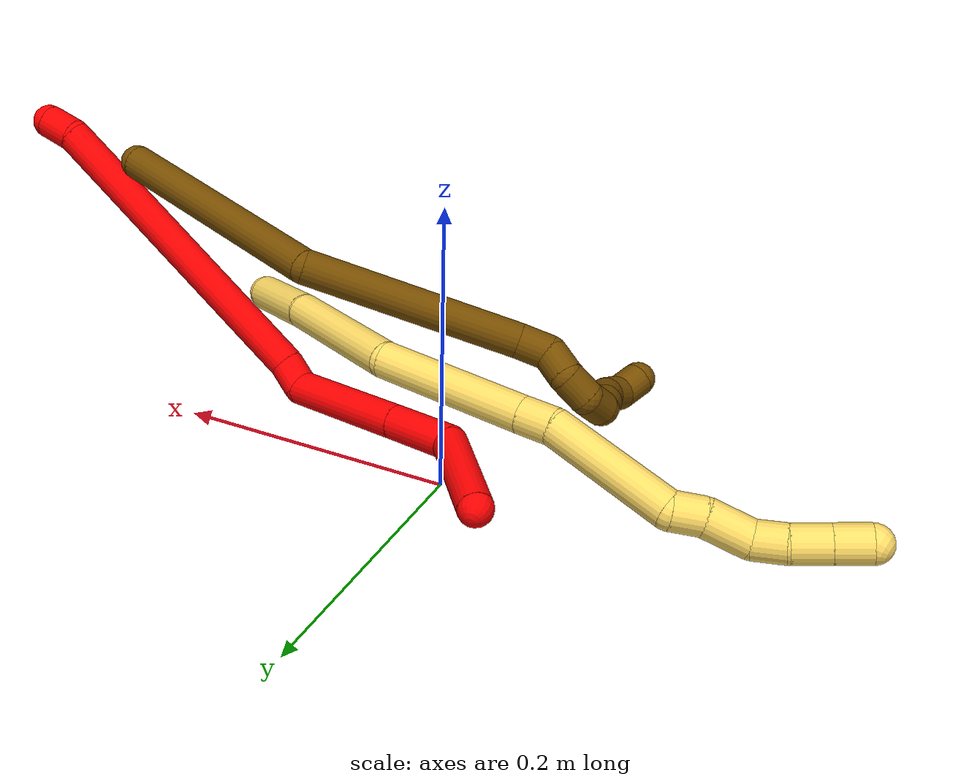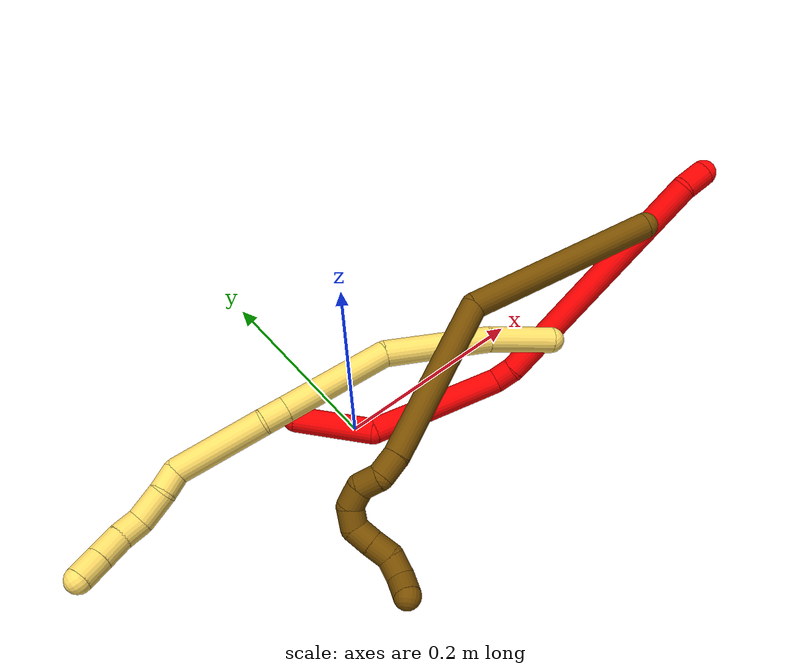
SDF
<sdf version="1.7">
 <world name="default">
  <model name="2">
   <static>0</static>
   <link name="2">
    <collision name="collision-cylinder-e_1_1_4">
     <pose>-0.010536 -0.005236 -0.003547 2.16624 -1.03019 -1.63583</pose>
     <geometry><cylinder><radius>0.0125</radius><length>0.024576</length></cylinder></geometry>
     <surface>
      <friction><ode><mu>1.16</mu><mu2>1.16</mu2><slip1>0</slip1><slip2>0</slip2></ode></friction>
      <contact><ode><kp>1e+06</kp><kd>1</kd><max_vel>0</max_vel><min_depth>0.001</min_depth></ode></contact>
     </surface>
    </collision>
    <visual name="visual-cylinder-e_1_1_4">
     <pose>-0.010536 -0.005236 -0.003547 2.16624 -1.03019 -1.63583</pose>
     <geometry><cylinder><radius>0.0125</radius><length>0.024576</length></cylinder></geometry>
     <material><ambient>1 0 0 1</ambient></material>
    </visual>
    <collision name="collision-cylinder-e_2_4_5">
     <pose>-0.096672 -0.092129 -0.049182 2.0467 -0.688577 -1.0634</pose>
     <geometry><cylinder><radius>0.0125</radius><length>0.23795</length></cylinder></geometry>
     <surface>
      <friction><ode><mu>1.16</mu><mu2>1.16</mu2><slip1>0</slip1><slip2>0</slip2></ode></friction>
      <contact><ode><kp>1e+06</kp><kd>1</kd><max_vel>0</max_vel><min_depth>0.001</min_depth></ode></contact>
     </surface>
    </collision>
    <visual name="visual-cylinder-e_2_4_5">
     <pose>-0.096672 -0.092129 -0.049182 2.0467 -0.688577 -1.0634</pose>
     <geometry><cylinder><radius>0.0125</radius><length>0.23795</length></cylinder></geometry>
     <material><ambient>1 0 0 1</ambient></material>
    </visual>
    <collision name="collision-cylinder-e_3_5_6">
     <pose>-0.178625 -0.180188 -0.097597 2.35048 -0.614539 -1.29965</pose>
     <geometry><cylinder><radius>0.0125</radius><length>0.022032</length></cylinder></geometry>
     <surface>
      <friction><ode><mu>1.16</mu><mu2>1.16</mu2><slip1>0</slip1><slip2>0</slip2></ode></friction>
      <contact><ode><kp>1e+06</kp><kd>1</kd><max_vel>0</max_vel><min_depth>0.001</min_depth></ode></contact>
     </surface>
    </collision>
    <visual name="visual-cylinder-e_3_5_6">
     <pose>-0.178625 -0.180188 -0.097597 2.35048 -0.614539 -1.29965</pose>
     <geometry><cylinder><radius>0.0125</radius><length>0.022032</length></cylinder></geometry>
     <material><ambient>1 0 0 1</ambient></material>
    </visual>
    <collision name="collision-cylinder-e_4_6_7">
     <pose>-0.227259 -0.190823 -0.117773 2.84486 -1.24083 -2.72918</pose>
     <geometry><cylinder><radius>0.0125</radius><length>0.089386</length></cylinder></geometry>
     <surface>
      <friction><ode><mu>1.16</mu><mu2>1.16</mu2><slip1>0</slip1><slip2>0</slip2></ode></friction>
      <contact><ode><kp>1e+06</kp><kd>1</kd><max_vel>0</max_vel><min_depth>0.001</min_depth></ode></contact>
     </surface>
    </collision>
    <visual name="visual-cylinder-e_4_6_7">
     <pose>-0.227259 -0.190823 -0.117773 2.84486 -1.24083 -2.72918</pose>
     <geometry><cylinder><radius>0.0125</radius><length>0.089386</length></cylinder></geometry>
     <material><ambient>1 0 0 1</ambient></material>
    </visual>
    <collision name="collision-cylinder-e_5_7_8">
     <pose>-0.29246 -0.197302 -0.139332 2.85831 -1.23379 -2.74477</pose>
     <geometry><cylinder><radius>0.0125</radius><length>0.048571</length></cylinder></geometry>
     <surface>
      <friction><ode><mu>1.16</mu><mu2>1.16</mu2><slip1>0</slip1><slip2>0</slip2></ode></friction>
      <contact><ode><kp>1e+06</kp><kd>1</kd><max_vel>0</max_vel><min_depth>0.001</min_depth></ode></contact>
     </surface>
    </collision>
    <visual name="visual-cylinder-e_5_7_8">
     <pose>-0.29246 -0.197302 -0.139332 2.85831 -1.23379 -2.74477</pose>
     <geometry><cylinder><radius>0.0125</radius><length>0.048571</length></cylinder></geometry>
     <material><ambient>1 0 0 1</ambient></material>
    </visual>
    <collision name="collision-cylinder-e_6_8_2">
     <pose>-0.33661 -0.195647 -0.179215 -3.02099 -0.579946 2.7423</pose>
     <geometry><cylinder><radius>0.0125</radius><length>0.077486</length></cylinder></geometry>
     <surface>
      <friction><ode><mu>1.16</mu><mu2>1.16</mu2><slip1>0</slip1><slip2>0</slip2></ode></friction>
      <contact><ode><kp>1e+06</kp><kd>1</kd><max_vel>0</max_vel><min_depth>0.001</min_depth></ode></contact>
     </surface>
    </collision>
    <visual name="visual-cylinder-e_6_8_2">
     <pose>-0.33661 -0.195647 -0.179215 -3.02099 -0.579946 2.7423</pose>
     <geometry><cylinder><radius>0.0125</radius><length>0.077486</length></cylinder></geometry>
     <material><ambient>1 0 0 1</ambient></material>
    </visual>
    <collision name="collision-sphere-2">
     <pose>-0.35784 -0.191748 -0.211388 0 -0 0</pose>
     <geometry><sphere><radius>0.0125</radius></sphere></geometry>
     <surface>
      <friction><ode><mu>1.16</mu><mu2>1.16</mu2><slip1>0</slip1><slip2>0</slip2></ode></friction>
      <contact><ode><kp>1e+06</kp><kd>1</kd><max_vel>0</max_vel><min_depth>0.001</min_depth></ode></contact>
     </surface>
    </collision>
    <visual name="visual-sphere-2">
     <pose>-0.35784 -0.191748 -0.211388 0 -0 0</pose>
     <geometry><sphere><radius>0.0125</radius></sphere></geometry>
     <material><ambient>1 0 0 1</ambient></material>
    </visual>
    <collision name="collision-sphere-4">
     <pose>-0.021071 -0.010471 -0.007094 0 -0 0</pose>
     <geometry><sphere><radius>0.0125</radius></sphere></geometry>
     <surface>
      <friction><ode><mu>1.16</mu><mu2>1.16</mu2><slip1>0</slip1><slip2>0</slip2></ode></friction>
      <contact><ode><kp>1e+06</kp><kd>1</kd><max_vel>0</max_vel><min_depth>0.001</min_depth></ode></contact>
     </surface>
    </collision>
    <visual name="visual-sphere-4">
     <pose>-0.021071 -0.010471 -0.007094 0 -0 0</pose>
     <geometry><sphere><radius>0.0125</radius></sphere></geometry>
     <material><ambient>1 0 0 1</ambient></material>
    </visual>
    <collision name="collision-sphere-1">
     <geometry><sphere><radius>0.0125</radius></sphere></geometry>
     <surface>
      <friction><ode><mu>1.16</mu><mu2>1.16</mu2><slip1>0</slip1><slip2>0</slip2></ode></friction>
      <contact><ode><kp>1e+06</kp><kd>1</kd><max_vel>0</max_vel><min_depth>0.001</min_depth></ode></contact>
     </surface>
    </collision>
    <visual name="visual-sphere-1">
     <geometry><sphere><radius>0.0125</radius></sphere></geometry>
     <material><ambient>1 0 0 1</ambient></material>
    </visual>
    <collision name="collision-sphere-8">
     <pose>-0.315379 -0.199546 -0.147042 0 -0 0</pose>
     <geometry><sphere><radius>0.0125</radius></sphere></geometry>
     <surface>
      <friction><ode><mu>1.16</mu><mu2>1.16</mu2><slip1>0</slip1><slip2>0</slip2></ode></friction>
      <contact><ode><kp>1e+06</kp><kd>1</kd><max_vel>0</max_vel><min_depth>0.001</min_depth></ode></contact>
     </surface>
    </collision>
    <visual name="visual-sphere-8">
     <pose>-0.315379 -0.199546 -0.147042 0 -0 0</pose>
     <geometry><sphere><radius>0.0125</radius></sphere></geometry>
     <material><ambient>1 0 0 1</ambient></material>
    </visual>
    <collision name="collision-sphere-5">
     <pose>-0.172274 -0.173788 -0.091269 0 -0 0</pose>
     <geometry><sphere><radius>0.0125</radius></sphere></geometry>
     <surface>
      <friction><ode><mu>1.16</mu><mu2>1.16</mu2><slip1>0</slip1><slip2>0</slip2></ode></friction>
      <contact><ode><kp>1e+06</kp><kd>1</kd><max_vel>0</max_vel><min_depth>0.001</min_depth></ode></contact>
     </surface>
    </collision>
    <visual name="visual-sphere-5">
     <pose>-0.172274 -0.173788 -0.091269 0 -0 0</pose>
     <geometry><sphere><radius>0.0125</radius></sphere></geometry>
     <material><ambient>1 0 0 1</ambient></material>
    </visual>
    <collision name="collision-sphere-6">
     <pose>-0.184977 -0.186589 -0.103925 0 -0 0</pose>
     <geometry><sphere><radius>0.0125</radius></sphere></geometry>
     <surface>
      <friction><ode><mu>1.16</mu><mu2>1.16</mu2><slip1>0</slip1><slip2>0</slip2></ode></friction>
      <contact><ode><kp>1e+06</kp><kd>1</kd><max_vel>0</max_vel><min_depth>0.001</min_depth></ode></contact>
     </surface>
    </collision>
    <visual name="visual-sphere-6">
     <pose>-0.184977 -0.186589 -0.103925 0 -0 0</pose>
     <geometry><sphere><radius>0.0125</radius></sphere></geometry>
     <material><ambient>1 0 0 1</ambient></material>
    </visual>
    <collision name="collision-sphere-7">
     <pose>-0.269541 -0.195057 -0.131622 0 -0 0</pose>
     <geometry><sphere><radius>0.0125</radius></sphere></geometry>
     <surface>
      <friction><ode><mu>1.16</mu><mu2>1.16</mu2><slip1>0</slip1><slip2>0</slip2></ode></friction>
      <contact><ode><kp>1e+06</kp><kd>1</kd><max_vel>0</max_vel><min_depth>0.001</min_depth></ode></contact>
     </surface>
    </collision>
    <visual name="visual-sphere-7">
     <pose>-0.269541 -0.195057 -0.131622 0 -0 0</pose>
     <geometry><sphere><radius>0.0125</radius></sphere></geometry>
     <material><ambient>1 0 0 1</ambient></material>
    </visual>
    <inertial>
     <pose>-0.175598 -0.135641 -0.090243 0 -0 0</pose>
     <mass>0.5</mass>
     <inertia>
      <ixx>-0.00042</ixx>
      <ixy>0</ixy>
      <ixz>0</ixz>
      <iyy>-0.000356</iyy>
      <iyz>0</iyz>
      <izz>0.001581</izz>
     </inertia>
    </inertial>
   </link>
   <pose>0.373489 -0.077136 0.168902 1.25482 0.248561 0.066878</pose>
  </model>
  <model name="5">
   <static>0</static>
   <link name="5">
    <collision name="collision-cylinder-e_1_1_4">
     <pose>-0.005741 0.016965 -0.026141 -2.56592 -0.182179 0.598528</pose>
     <geometry><cylinder><radius>0.0125</radius><length>0.063376</length></cylinder></geometry>
     <surface>
      <friction><ode><mu>1.16</mu><mu2>1.16</mu2><slip1>0</slip1><slip2>0</slip2></ode></friction>
      <contact><ode><kp>1e+06</kp><kd>1</kd><max_vel>0</max_vel><min_depth>0.001</min_depth></ode></contact>
     </surface>
    </collision>
    <visual name="visual-cylinder-e_1_1_4">
     <pose>-0.005741 0.016965 -0.026141 -2.56592 -0.182179 0.598528</pose>
     <geometry><cylinder><radius>0.0125</radius><length>0.063376</length></cylinder></geometry>
     <material><ambient>1 0.858824 0.4 1</ambient></material>
    </visual>
    <collision name="collision-cylinder-e_2_4_5">
     <pose>-0.016974 0.055629 -0.097721 -2.69608 -0.108634 0.471147</pose>
     <geometry><cylinder><radius>0.0125</radius><length>0.101307</length></cylinder></geometry>
     <surface>
      <friction><ode><mu>1.16</mu><mu2>1.16</mu2><slip1>0</slip1><slip2>0</slip2></ode></friction>
      <contact><ode><kp>1e+06</kp><kd>1</kd><max_vel>0</max_vel><min_depth>0.001</min_depth></ode></contact>
     </surface>
    </collision>
    <visual name="visual-cylinder-e_2_4_5">
     <pose>-0.016974 0.055629 -0.097721 -2.69608 -0.108634 0.471147</pose>
     <geometry><cylinder><radius>0.0125</radius><length>0.101307</length></cylinder></geometry>
     <material><ambient>1 0.858824 0.4 1</ambient></material>
    </visual>
    <collision name="collision-cylinder-e_3_5_6">
     <pose>-0.030618 0.080465 -0.19485 -3.08098 -0.156141 2.40213</pose>
     <geometry><cylinder><radius>0.0125</radius><length>0.104844</length></cylinder></geometry>
     <surface>
      <friction><ode><mu>1.16</mu><mu2>1.16</mu2><slip1>0</slip1><slip2>0</slip2></ode></friction>
      <contact><ode><kp>1e+06</kp><kd>1</kd><max_vel>0</max_vel><min_depth>0.001</min_depth></ode></contact>
     </surface>
    </collision>
    <visual name="visual-cylinder-e_3_5_6">
     <pose>-0.030618 0.080465 -0.19485 -3.08098 -0.156141 2.40213</pose>
     <geometry><cylinder><radius>0.0125</radius><length>0.104844</length></cylinder></geometry>
     <material><ambient>1 0.858824 0.4 1</ambient></material>
    </visual>
    <collision name="collision-cylinder-e_4_6_7">
     <pose>-0.040733 0.084331 -0.257697 -3.07642 -0.173799 2.42551</pose>
     <geometry><cylinder><radius>0.0125</radius><length>0.022705</length></cylinder></geometry>
     <surface>
      <friction><ode><mu>1.16</mu><mu2>1.16</mu2><slip1>0</slip1><slip2>0</slip2></ode></friction>
      <contact><ode><kp>1e+06</kp><kd>1</kd><max_vel>0</max_vel><min_depth>0.001</min_depth></ode></contact>
     </surface>
    </collision>
    <visual name="visual-cylinder-e_4_6_7">
     <pose>-0.040733 0.084331 -0.257697 -3.07642 -0.173799 2.42551</pose>
     <geometry><cylinder><radius>0.0125</radius><length>0.022705</length></cylinder></geometry>
     <material><ambient>1 0.858824 0.4 1</ambient></material>
    </visual>
    <collision name="collision-cylinder-e_5_7_8">
     <pose>-0.039298 0.089087 -0.312347 -3.04924 0.077637 -1.39787</pose>
     <geometry><cylinder><radius>0.0125</radius><length>0.087621</length></cylinder></geometry>
     <surface>
      <friction><ode><mu>1.16</mu><mu2>1.16</mu2><slip1>0</slip1><slip2>0</slip2></ode></friction>
      <contact><ode><kp>1e+06</kp><kd>1</kd><max_vel>0</max_vel><min_depth>0.001</min_depth></ode></contact>
     </surface>
    </collision>
    <visual name="visual-cylinder-e_5_7_8">
     <pose>-0.039298 0.089087 -0.312347 -3.04924 0.077637 -1.39787</pose>
     <geometry><cylinder><radius>0.0125</radius><length>0.087621</length></cylinder></geometry>
     <material><ambient>1 0.858824 0.4 1</ambient></material>
    </visual>
    <collision name="collision-cylinder-e_6_8_9">
     <pose>-0.038506 0.088456 -0.365007 2.67146 -0.248184 -0.960322</pose>
     <geometry><cylinder><radius>0.0125</radius><length>0.021217</length></cylinder></geometry>
     <surface>
      <friction><ode><mu>1.16</mu><mu2>1.16</mu2><slip1>0</slip1><slip2>0</slip2></ode></friction>
      <contact><ode><kp>1e+06</kp><kd>1</kd><max_vel>0</max_vel><min_depth>0.001</min_depth></ode></contact>
     </surface>
    </collision>
    <visual name="visual-cylinder-e_6_8_9">
     <pose>-0.038506 0.088456 -0.365007 2.67146 -0.248184 -0.960322</pose>
     <geometry><cylinder><radius>0.0125</radius><length>0.021217</length></cylinder></geometry>
     <material><ambient>1 0.858824 0.4 1</ambient></material>
    </visual>
    <collision name="collision-cylinder-e_7_9_10">
     <pose>-0.041131 0.078888 -0.388545 2.81237 -0.001283 -0.007724</pose>
     <geometry><cylinder><radius>0.0125</radius><length>0.030371</length></cylinder></geometry>
     <surface>
      <friction><ode><mu>1.16</mu><mu2>1.16</mu2><slip1>0</slip1><slip2>0</slip2></ode></friction>
      <contact><ode><kp>1e+06</kp><kd>1</kd><max_vel>0</max_vel><min_depth>0.001</min_depth></ode></contact>
     </surface>
    </collision>
    <visual name="visual-cylinder-e_7_9_10">
     <pose>-0.041131 0.078888 -0.388545 2.81237 -0.001283 -0.007724</pose>
     <geometry><cylinder><radius>0.0125</radius><length>0.030371</length></cylinder></geometry>
     <material><ambient>1 0.858824 0.4 1</ambient></material>
    </visual>
    <collision name="collision-cylinder-e_8_10_11">
     <pose>-0.045341 0.072564 -0.412662 2.99748 -0.402197 -2.46098</pose>
     <geometry><cylinder><radius>0.0125</radius><length>0.021407</length></cylinder></geometry>
     <surface>
      <friction><ode><mu>1.16</mu><mu2>1.16</mu2><slip1>0</slip1><slip2>0</slip2></ode></friction>
      <contact><ode><kp>1e+06</kp><kd>1</kd><max_vel>0</max_vel><min_depth>0.001</min_depth></ode></contact>
     </surface>
    </collision>
    <visual name="visual-cylinder-e_8_10_11">
     <pose>-0.045341 0.072564 -0.412662 2.99748 -0.402197 -2.46098</pose>
     <geometry><cylinder><radius>0.0125</radius><length>0.021407</length></cylinder></geometry>
     <material><ambient>1 0.858824 0.4 1</ambient></material>
    </visual>
    <collision name="collision-cylinder-e_9_11_12">
     <pose>-0.055235 0.067847 -0.432592 2.82797 -0.489575 -2.01299</pose>
     <geometry><cylinder><radius>0.0125</radius><length>0.02426</length></cylinder></geometry>
     <surface>
      <friction><ode><mu>1.16</mu><mu2>1.16</mu2><slip1>0</slip1><slip2>0</slip2></ode></friction>
      <contact><ode><kp>1e+06</kp><kd>1</kd><max_vel>0</max_vel><min_depth>0.001</min_depth></ode></contact>
     </surface>
    </collision>
    <visual name="visual-cylinder-e_9_11_12">
     <pose>-0.055235 0.067847 -0.432592 2.82797 -0.489575 -2.01299</pose>
     <geometry><cylinder><radius>0.0125</radius><length>0.02426</length></cylinder></geometry>
     <material><ambient>1 0.858824 0.4 1</ambient></material>
    </visual>
    <collision name="collision-cylinder-e_10_12_2">
     <pose>-0.06631 0.061508 -0.452416 2.83649 -0.488433 -2.03597</pose>
     <geometry><cylinder><radius>0.0125</radius><length>0.022893</length></cylinder></geometry>
     <surface>
      <friction><ode><mu>1.16</mu><mu2>1.16</mu2><slip1>0</slip1><slip2>0</slip2></ode></friction>
      <contact><ode><kp>1e+06</kp><kd>1</kd><max_vel>0</max_vel><min_depth>0.001</min_depth></ode></contact>
     </surface>
    </collision>
    <visual name="visual-cylinder-e_10_12_2">
     <pose>-0.06631 0.061508 -0.452416 2.83649 -0.488433 -2.03597</pose>
     <geometry><cylinder><radius>0.0125</radius><length>0.022893</length></cylinder></geometry>
     <material><ambient>1 0.858824 0.4 1</ambient></material>
    </visual>
    <collision name="collision-sphere-2">
     <pose>-0.071681 0.058472 -0.462057 0 -0 0</pose>
     <geometry><sphere><radius>0.0125</radius></sphere></geometry>
     <surface>
      <friction><ode><mu>1.16</mu><mu2>1.16</mu2><slip1>0</slip1><slip2>0</slip2></ode></friction>
      <contact><ode><kp>1e+06</kp><kd>1</kd><max_vel>0</max_vel><min_depth>0.001</min_depth></ode></contact>
     </surface>
    </collision>
    <visual name="visual-sphere-2">
     <pose>-0.071681 0.058472 -0.462057 0 -0 0</pose>
     <geometry><sphere><radius>0.0125</radius></sphere></geometry>
     <material><ambient>1 0.858824 0.4 1</ambient></material>
    </visual>
    <collision name="collision-sphere-12">
     <pose>-0.060939 0.064545 -0.442775 0 -0 0</pose>
     <geometry><sphere><radius>0.0125</radius></sphere></geometry>
     <surface>
      <friction><ode><mu>1.16</mu><mu2>1.16</mu2><slip1>0</slip1><slip2>0</slip2></ode></friction>
      <contact><ode><kp>1e+06</kp><kd>1</kd><max_vel>0</max_vel><min_depth>0.001</min_depth></ode></contact>
     </surface>
    </collision>
    <visual name="visual-sphere-12">
     <pose>-0.060939 0.064545 -0.442775 0 -0 0</pose>
     <geometry><sphere><radius>0.0125</radius></sphere></geometry>
     <material><ambient>1 0.858824 0.4 1</ambient></material>
    </visual>
    <collision name="collision-sphere-11">
     <pose>-0.049531 0.07115 -0.422409 0 -0 0</pose>
     <geometry><sphere><radius>0.0125</radius></sphere></geometry>
     <surface>
      <friction><ode><mu>1.16</mu><mu2>1.16</mu2><slip1>0</slip1><slip2>0</slip2></ode></friction>
      <contact><ode><kp>1e+06</kp><kd>1</kd><max_vel>0</max_vel><min_depth>0.001</min_depth></ode></contact>
     </surface>
    </collision>
    <visual name="visual-sphere-11">
     <pose>-0.049531 0.07115 -0.422409 0 -0 0</pose>
     <geometry><sphere><radius>0.0125</radius></sphere></geometry>
     <material><ambient>1 0.858824 0.4 1</ambient></material>
    </visual>
    <collision name="collision-sphere-10">
     <pose>-0.041151 0.073979 -0.402914 0 -0 0</pose>
     <geometry><sphere><radius>0.0125</radius></sphere></geometry>
     <surface>
      <friction><ode><mu>1.16</mu><mu2>1.16</mu2><slip1>0</slip1><slip2>0</slip2></ode></friction>
      <contact><ode><kp>1e+06</kp><kd>1</kd><max_vel>0</max_vel><min_depth>0.001</min_depth></ode></contact>
     </surface>
    </collision>
    <visual name="visual-sphere-10">
     <pose>-0.041151 0.073979 -0.402914 0 -0 0</pose>
     <geometry><sphere><radius>0.0125</radius></sphere></geometry>
     <material><ambient>1 0.858824 0.4 1</ambient></material>
    </visual>
    <collision name="collision-sphere-9">
     <pose>-0.041112 0.083798 -0.374175 0 -0 0</pose>
     <geometry><sphere><radius>0.0125</radius></sphere></geometry>
     <surface>
      <friction><ode><mu>1.16</mu><mu2>1.16</mu2><slip1>0</slip1><slip2>0</slip2></ode></friction>
      <contact><ode><kp>1e+06</kp><kd>1</kd><max_vel>0</max_vel><min_depth>0.001</min_depth></ode></contact>
     </surface>
    </collision>
    <visual name="visual-sphere-9">
     <pose>-0.041112 0.083798 -0.374175 0 -0 0</pose>
     <geometry><sphere><radius>0.0125</radius></sphere></geometry>
     <material><ambient>1 0.858824 0.4 1</ambient></material>
    </visual>
    <collision name="collision-sphere-4">
     <pose>-0.011482 0.03393 -0.052281 0 -0 0</pose>
     <geometry><sphere><radius>0.0125</radius></sphere></geometry>
     <surface>
      <friction><ode><mu>1.16</mu><mu2>1.16</mu2><slip1>0</slip1><slip2>0</slip2></ode></friction>
      <contact><ode><kp>1e+06</kp><kd>1</kd><max_vel>0</max_vel><min_depth>0.001</min_depth></ode></contact>
     </surface>
    </collision>
    <visual name="visual-sphere-4">
     <pose>-0.011482 0.03393 -0.052281 0 -0 0</pose>
     <geometry><sphere><radius>0.0125</radius></sphere></geometry>
     <material><ambient>1 0.858824 0.4 1</ambient></material>
    </visual>
    <collision name="collision-sphere-1">
     <geometry><sphere><radius>0.0125</radius></sphere></geometry>
     <surface>
      <friction><ode><mu>1.16</mu><mu2>1.16</mu2><slip1>0</slip1><slip2>0</slip2></ode></friction>
      <contact><ode><kp>1e+06</kp><kd>1</kd><max_vel>0</max_vel><min_depth>0.001</min_depth></ode></contact>
     </surface>
    </collision>
    <visual name="visual-sphere-1">
     <geometry><sphere><radius>0.0125</radius></sphere></geometry>
     <material><ambient>1 0.858824 0.4 1</ambient></material>
    </visual>
    <collision name="collision-sphere-8">
     <pose>-0.0359 0.093115 -0.355839 0 -0 0</pose>
     <geometry><sphere><radius>0.0125</radius></sphere></geometry>
     <surface>
      <friction><ode><mu>1.16</mu><mu2>1.16</mu2><slip1>0</slip1><slip2>0</slip2></ode></friction>
      <contact><ode><kp>1e+06</kp><kd>1</kd><max_vel>0</max_vel><min_depth>0.001</min_depth></ode></contact>
     </surface>
    </collision>
    <visual name="visual-sphere-8">
     <pose>-0.0359 0.093115 -0.355839 0 -0 0</pose>
     <geometry><sphere><radius>0.0125</radius></sphere></geometry>
     <material><ambient>1 0.858824 0.4 1</ambient></material>
    </visual>
    <collision name="collision-sphere-5">
     <pose>-0.022466 0.077328 -0.143161 0 -0 0</pose>
     <geometry><sphere><radius>0.0125</radius></sphere></geometry>
     <surface>
      <friction><ode><mu>1.16</mu><mu2>1.16</mu2><slip1>0</slip1><slip2>0</slip2></ode></friction>
      <contact><ode><kp>1e+06</kp><kd>1</kd><max_vel>0</max_vel><min_depth>0.001</min_depth></ode></contact>
     </surface>
    </collision>
    <visual name="visual-sphere-5">
     <pose>-0.022466 0.077328 -0.143161 0 -0 0</pose>
     <geometry><sphere><radius>0.0125</radius></sphere></geometry>
     <material><ambient>1 0.858824 0.4 1</ambient></material>
    </visual>
    <collision name="collision-sphere-6">
     <pose>-0.03877 0.083602 -0.246539 0 -0 0</pose>
     <geometry><sphere><radius>0.0125</radius></sphere></geometry>
     <surface>
      <friction><ode><mu>1.16</mu><mu2>1.16</mu2><slip1>0</slip1><slip2>0</slip2></ode></friction>
      <contact><ode><kp>1e+06</kp><kd>1</kd><max_vel>0</max_vel><min_depth>0.001</min_depth></ode></contact>
     </surface>
    </collision>
    <visual name="visual-sphere-6">
     <pose>-0.03877 0.083602 -0.246539 0 -0 0</pose>
     <geometry><sphere><radius>0.0125</radius></sphere></geometry>
     <material><ambient>1 0.858824 0.4 1</ambient></material>
    </visual>
    <collision name="collision-sphere-7">
     <pose>-0.042696 0.085059 -0.268854 0 -0 0</pose>
     <geometry><sphere><radius>0.0125</radius></sphere></geometry>
     <surface>
      <friction><ode><mu>1.16</mu><mu2>1.16</mu2><slip1>0</slip1><slip2>0</slip2></ode></friction>
      <contact><ode><kp>1e+06</kp><kd>1</kd><max_vel>0</max_vel><min_depth>0.001</min_depth></ode></contact>
     </surface>
    </collision>
    <visual name="visual-sphere-7">
     <pose>-0.042696 0.085059 -0.268854 0 -0 0</pose>
     <geometry><sphere><radius>0.0125</radius></sphere></geometry>
     <material><ambient>1 0.858824 0.4 1</ambient></material>
    </visual>
    <inertial>
     <pose>-0.031113 0.067496 -0.22887 0 -0 0</pose>
     <mass>0.5</mass>
     <inertia><ixx>8.9e-05</ixx><ixy>0</ixy><ixz>0</ixz><iyy>4.2e-05</iyy><iyz>0</iyz><izz>-6.8e-05</izz></inertia>
    </inertial>
   </link>
   <pose>0.18415 -0.07804 0.066811 1.05647 1.08371 0.983697</pose>
  </model>
  <model name="12">
   <static>0</static>
   <link name="12">
    <collision name="collision-cylinder-e_1_1_4">
     <pose>0.056938 -0.052862 -0.045959 2.28646 0.682531 1.32412</pose>
     <geometry><cylinder><radius>0.0125</radius><length>0.180539</length></cylinder></geometry>
     <surface>
      <friction><ode><mu>1.16</mu><mu2>1.16</mu2><slip1>0</slip1><slip2>0</slip2></ode></friction>
      <contact><ode><kp>1e+06</kp><kd>1</kd><max_vel>0</max_vel><min_depth>0.001</min_depth></ode></contact>
     </surface>
    </collision>
    <visual name="visual-cylinder-e_1_1_4">
     <pose>0.056938 -0.052862 -0.045959 2.28646 0.682531 1.32412</pose>
     <geometry><cylinder><radius>0.0125</radius><length>0.180539</length></cylinder></geometry>
     <material><ambient>0.466667 0.301961 0 1</ambient></material>
    </visual>
    <collision name="collision-cylinder-e_2_4_5">
     <pose>0.130009 -0.132602 -0.163027 2.78021 0.209108 1.04279</pose>
     <geometry><cylinder><radius>0.0125</radius><length>0.155424</length></cylinder></geometry>
     <surface>
      <friction><ode><mu>1.16</mu><mu2>1.16</mu2><slip1>0</slip1><slip2>0</slip2></ode></friction>
      <contact><ode><kp>1e+06</kp><kd>1</kd><max_vel>0</max_vel><min_depth>0.001</min_depth></ode></contact>
     </surface>
    </collision>
    <visual name="visual-cylinder-e_2_4_5">
     <pose>0.130009 -0.132602 -0.163027 2.78021 0.209108 1.04279</pose>
     <geometry><cylinder><radius>0.0125</radius><length>0.155424</length></cylinder></geometry>
     <material><ambient>0.466667 0.301961 0 1</ambient></material>
    </visual>
    <collision name="collision-cylinder-e_3_5_6">
     <pose>0.150074 -0.164347 -0.243726 2.67197 0.350647 1.27477</pose>
     <geometry><cylinder><radius>0.0125</radius><length>0.022903</length></cylinder></geometry>
     <surface>
      <friction><ode><mu>1.16</mu><mu2>1.16</mu2><slip1>0</slip1><slip2>0</slip2></ode></friction>
      <contact><ode><kp>1e+06</kp><kd>1</kd><max_vel>0</max_vel><min_depth>0.001</min_depth></ode></contact>
     </surface>
    </collision>
    <visual name="visual-cylinder-e_3_5_6">
     <pose>0.150074 -0.164347 -0.243726 2.67197 0.350647 1.27477</pose>
     <geometry><cylinder><radius>0.0125</radius><length>0.022903</length></cylinder></geometry>
     <material><ambient>0.466667 0.301961 0 1</ambient></material>
    </visual>
    <collision name="collision-cylinder-e_4_6_7">
     <pose>0.158091 -0.177986 -0.257004 1.96872 0.405303 0.599856</pose>
     <geometry><cylinder><radius>0.0125</radius><length>0.020708</length></cylinder></geometry>
     <surface>
      <friction><ode><mu>1.16</mu><mu2>1.16</mu2><slip1>0</slip1><slip2>0</slip2></ode></friction>
      <contact><ode><kp>1e+06</kp><kd>1</kd><max_vel>0</max_vel><min_depth>0.001</min_depth></ode></contact>
     </surface>
    </collision>
    <visual name="visual-cylinder-e_4_6_7">
     <pose>0.158091 -0.177986 -0.257004 1.96872 0.405303 0.599856</pose>
     <geometry><cylinder><radius>0.0125</radius><length>0.020708</length></cylinder></geometry>
     <material><ambient>0.466667 0.301961 0 1</ambient></material>
    </visual>
    <collision name="collision-cylinder-e_5_7_8">
     <pose>0.161774 -0.193863 -0.267993 2.3698 -0.039194 -0.096411</pose>
     <geometry><cylinder><radius>0.0125</radius><length>0.020392</length></cylinder></geometry>
     <surface>
      <friction><ode><mu>1.16</mu><mu2>1.16</mu2><slip1>0</slip1><slip2>0</slip2></ode></friction>
      <contact><ode><kp>1e+06</kp><kd>1</kd><max_vel>0</max_vel><min_depth>0.001</min_depth></ode></contact>
     </surface>
    </collision>
    <visual name="visual-cylinder-e_5_7_8">
     <pose>0.161774 -0.193863 -0.267993 2.3698 -0.039194 -0.096411</pose>
     <geometry><cylinder><radius>0.0125</radius><length>0.020392</length></cylinder></geometry>
     <material><ambient>0.466667 0.301961 0 1</ambient></material>
    </visual>
    <collision name="collision-cylinder-e_6_8_9">
     <pose>0.156169 -0.203608 -0.283418 2.82742 -0.547312 -2.11413</pose>
     <geometry><cylinder><radius>0.0125</radius><length>0.020006</length></cylinder></geometry>
     <surface>
      <friction><ode><mu>1.16</mu><mu2>1.16</mu2><slip1>0</slip1><slip2>0</slip2></ode></friction>
      <contact><ode><kp>1e+06</kp><kd>1</kd><max_vel>0</max_vel><min_depth>0.001</min_depth></ode></contact>
     </surface>
    </collision>
    <visual name="visual-cylinder-e_6_8_9">
     <pose>0.156169 -0.203608 -0.283418 2.82742 -0.547312 -2.11413</pose>
     <geometry><cylinder><radius>0.0125</radius><length>0.020006</length></cylinder></geometry>
     <material><ambient>0.466667 0.301961 0 1</ambient></material>
    </visual>
    <collision name="collision-cylinder-e_7_9_10">
     <pose>0.14347 -0.202472 -0.296996 -2.53611 -0.846185 1.92868</pose>
     <geometry><cylinder><radius>0.0125</radius><length>0.020015</length></cylinder></geometry>
     <surface>
      <friction><ode><mu>1.16</mu><mu2>1.16</mu2><slip1>0</slip1><slip2>0</slip2></ode></friction>
      <contact><ode><kp>1e+06</kp><kd>1</kd><max_vel>0</max_vel><min_depth>0.001</min_depth></ode></contact>
     </surface>
    </collision>
    <visual name="visual-cylinder-e_7_9_10">
     <pose>0.14347 -0.202472 -0.296996 -2.53611 -0.846185 1.92868</pose>
     <geometry><cylinder><radius>0.0125</radius><length>0.020015</length></cylinder></geometry>
     <material><ambient>0.466667 0.301961 0 1</ambient></material>
    </visual>
    <collision name="collision-cylinder-e_8_10_11">
     <pose>0.128251 -0.194778 -0.307458 -2.47758 -0.882167 1.88007</pose>
     <geometry><cylinder><radius>0.0125</radius><length>0.020012</length></cylinder></geometry>
     <surface>
      <friction><ode><mu>1.16</mu><mu2>1.16</mu2><slip1>0</slip1><slip2>0</slip2></ode></friction>
      <contact><ode><kp>1e+06</kp><kd>1</kd><max_vel>0</max_vel><min_depth>0.001</min_depth></ode></contact>
     </surface>
    </collision>
    <visual name="visual-cylinder-e_8_10_11">
     <pose>0.128251 -0.194778 -0.307458 -2.47758 -0.882167 1.88007</pose>
     <geometry><cylinder><radius>0.0125</radius><length>0.020012</length></cylinder></geometry>
     <material><ambient>0.466667 0.301961 0 1</ambient></material>
    </visual>
    <collision name="collision-cylinder-e_9_11_12">
     <pose>0.115226 -0.189077 -0.320757 -2.92992 -0.558433 2.4319</pose>
     <geometry><cylinder><radius>0.0125</radius><length>0.02</length></cylinder></geometry>
     <surface>
      <friction><ode><mu>1.16</mu><mu2>1.16</mu2><slip1>0</slip1><slip2>0</slip2></ode></friction>
      <contact><ode><kp>1e+06</kp><kd>1</kd><max_vel>0</max_vel><min_depth>0.001</min_depth></ode></contact>
     </surface>
    </collision>
    <visual name="visual-cylinder-e_9_11_12">
     <pose>0.115226 -0.189077 -0.320757 -2.92992 -0.558433 2.4319</pose>
     <geometry><cylinder><radius>0.0125</radius><length>0.02</length></cylinder></geometry>
     <material><ambient>0.466667 0.301961 0 1</ambient></material>
    </visual>
    <collision name="collision-cylinder-e_10_12_2">
     <pose>0.109597 -0.181861 -0.337437 -2.56673 -0.033112 0.111902</pose>
     <geometry><cylinder><radius>0.0125</radius><length>0.02</length></cylinder></geometry>
     <surface>
      <friction><ode><mu>1.16</mu><mu2>1.16</mu2><slip1>0</slip1><slip2>0</slip2></ode></friction>
      <contact><ode><kp>1e+06</kp><kd>1</kd><max_vel>0</max_vel><min_depth>0.001</min_depth></ode></contact>
     </surface>
    </collision>
    <visual name="visual-cylinder-e_10_12_2">
     <pose>0.109597 -0.181861 -0.337437 -2.56673 -0.033112 0.111902</pose>
     <geometry><cylinder><radius>0.0125</radius><length>0.02</length></cylinder></geometry>
     <material><ambient>0.466667 0.301961 0 1</ambient></material>
    </visual>
    <collision name="collision-sphere-2">
     <pose>0.109266 -0.176427 -0.345825 0 -0 0</pose>
     <geometry><sphere><radius>0.0125</radius></sphere></geometry>
     <surface>
      <friction><ode><mu>1.16</mu><mu2>1.16</mu2><slip1>0</slip1><slip2>0</slip2></ode></friction>
      <contact><ode><kp>1e+06</kp><kd>1</kd><max_vel>0</max_vel><min_depth>0.001</min_depth></ode></contact>
     </surface>
    </collision>
    <visual name="visual-sphere-2">
     <pose>0.109266 -0.176427 -0.345825 0 -0 0</pose>
     <geometry><sphere><radius>0.0125</radius></sphere></geometry>
     <material><ambient>0.466667 0.301961 0 1</ambient></material>
    </visual>
    <collision name="collision-sphere-12">
     <pose>0.109928 -0.187295 -0.329049 0 -0 0</pose>
     <geometry><sphere><radius>0.0125</radius></sphere></geometry>
     <surface>
      <friction><ode><mu>1.16</mu><mu2>1.16</mu2><slip1>0</slip1><slip2>0</slip2></ode></friction>
      <contact><ode><kp>1e+06</kp><kd>1</kd><max_vel>0</max_vel><min_depth>0.001</min_depth></ode></contact>
     </surface>
    </collision>
    <visual name="visual-sphere-12">
     <pose>0.109928 -0.187295 -0.329049 0 -0 0</pose>
     <geometry><sphere><radius>0.0125</radius></sphere></geometry>
     <material><ambient>0.466667 0.301961 0 1</ambient></material>
    </visual>
    <collision name="collision-sphere-11">
     <pose>0.120525 -0.190859 -0.312465 0 -0 0</pose>
     <geometry><sphere><radius>0.0125</radius></sphere></geometry>
     <surface>
      <friction><ode><mu>1.16</mu><mu2>1.16</mu2><slip1>0</slip1><slip2>0</slip2></ode></friction>
      <contact><ode><kp>1e+06</kp><kd>1</kd><max_vel>0</max_vel><min_depth>0.001</min_depth></ode></contact>
     </surface>
    </collision>
    <visual name="visual-sphere-11">
     <pose>0.120525 -0.190859 -0.312465 0 -0 0</pose>
     <geometry><sphere><radius>0.0125</radius></sphere></geometry>
     <material><ambient>0.466667 0.301961 0 1</ambient></material>
    </visual>
    <collision name="collision-sphere-10">
     <pose>0.135977 -0.198697 -0.30245 0 -0 0</pose>
     <geometry><sphere><radius>0.0125</radius></sphere></geometry>
     <surface>
      <friction><ode><mu>1.16</mu><mu2>1.16</mu2><slip1>0</slip1><slip2>0</slip2></ode></friction>
      <contact><ode><kp>1e+06</kp><kd>1</kd><max_vel>0</max_vel><min_depth>0.001</min_depth></ode></contact>
     </surface>
    </collision>
    <visual name="visual-sphere-10">
     <pose>0.135977 -0.198697 -0.30245 0 -0 0</pose>
     <geometry><sphere><radius>0.0125</radius></sphere></geometry>
     <material><ambient>0.466667 0.301961 0 1</ambient></material>
    </visual>
    <collision name="collision-sphere-9">
     <pose>0.150963 -0.206248 -0.291542 0 -0 0</pose>
     <geometry><sphere><radius>0.0125</radius></sphere></geometry>
     <surface>
      <friction><ode><mu>1.16</mu><mu2>1.16</mu2><slip1>0</slip1><slip2>0</slip2></ode></friction>
      <contact><ode><kp>1e+06</kp><kd>1</kd><max_vel>0</max_vel><min_depth>0.001</min_depth></ode></contact>
     </surface>
    </collision>
    <visual name="visual-sphere-9">
     <pose>0.150963 -0.206248 -0.291542 0 -0 0</pose>
     <geometry><sphere><radius>0.0125</radius></sphere></geometry>
     <material><ambient>0.466667 0.301961 0 1</ambient></material>
    </visual>
    <collision name="collision-sphere-4">
     <pose>0.113877 -0.105724 -0.091918 0 -0 0</pose>
     <geometry><sphere><radius>0.0125</radius></sphere></geometry>
     <surface>
      <friction><ode><mu>1.16</mu><mu2>1.16</mu2><slip1>0</slip1><slip2>0</slip2></ode></friction>
      <contact><ode><kp>1e+06</kp><kd>1</kd><max_vel>0</max_vel><min_depth>0.001</min_depth></ode></contact>
     </surface>
    </collision>
    <visual name="visual-sphere-4">
     <pose>0.113877 -0.105724 -0.091918 0 -0 0</pose>
     <geometry><sphere><radius>0.0125</radius></sphere></geometry>
     <material><ambient>0.466667 0.301961 0 1</ambient></material>
    </visual>
    <collision name="collision-sphere-1">
     <geometry><sphere><radius>0.0125</radius></sphere></geometry>
     <surface>
      <friction><ode><mu>1.16</mu><mu2>1.16</mu2><slip1>0</slip1><slip2>0</slip2></ode></friction>
      <contact><ode><kp>1e+06</kp><kd>1</kd><max_vel>0</max_vel><min_depth>0.001</min_depth></ode></contact>
     </surface>
    </collision>
    <visual name="visual-sphere-1">
     <geometry><sphere><radius>0.0125</radius></sphere></geometry>
     <material><ambient>0.466667 0.301961 0 1</ambient></material>
    </visual>
    <collision name="collision-sphere-8">
     <pose>0.161374 -0.200968 -0.275294 0 -0 0</pose>
     <geometry><sphere><radius>0.0125</radius></sphere></geometry>
     <surface>
      <friction><ode><mu>1.16</mu><mu2>1.16</mu2><slip1>0</slip1><slip2>0</slip2></ode></friction>
      <contact><ode><kp>1e+06</kp><kd>1</kd><max_vel>0</max_vel><min_depth>0.001</min_depth></ode></contact>
     </surface>
    </collision>
    <visual name="visual-sphere-8">
     <pose>0.161374 -0.200968 -0.275294 0 -0 0</pose>
     <geometry><sphere><radius>0.0125</radius></sphere></geometry>
     <material><ambient>0.466667 0.301961 0 1</ambient></material>
    </visual>
    <collision name="collision-sphere-5">
     <pose>0.146141 -0.15948 -0.234136 0 -0 0</pose>
     <geometry><sphere><radius>0.0125</radius></sphere></geometry>
     <surface>
      <friction><ode><mu>1.16</mu><mu2>1.16</mu2><slip1>0</slip1><slip2>0</slip2></ode></friction>
      <contact><ode><kp>1e+06</kp><kd>1</kd><max_vel>0</max_vel><min_depth>0.001</min_depth></ode></contact>
     </surface>
    </collision>
    <visual name="visual-sphere-5">
     <pose>0.146141 -0.15948 -0.234136 0 -0 0</pose>
     <geometry><sphere><radius>0.0125</radius></sphere></geometry>
     <material><ambient>0.466667 0.301961 0 1</ambient></material>
    </visual>
    <collision name="collision-sphere-6">
     <pose>0.154008 -0.169214 -0.253317 0 -0 0</pose>
     <geometry><sphere><radius>0.0125</radius></sphere></geometry>
     <surface>
      <friction><ode><mu>1.16</mu><mu2>1.16</mu2><slip1>0</slip1><slip2>0</slip2></ode></friction>
      <contact><ode><kp>1e+06</kp><kd>1</kd><max_vel>0</max_vel><min_depth>0.001</min_depth></ode></contact>
     </surface>
    </collision>
    <visual name="visual-sphere-6">
     <pose>0.154008 -0.169214 -0.253317 0 -0 0</pose>
     <geometry><sphere><radius>0.0125</radius></sphere></geometry>
     <material><ambient>0.466667 0.301961 0 1</ambient></material>
    </visual>
    <collision name="collision-sphere-7">
     <pose>0.162173 -0.186757 -0.260691 0 -0 0</pose>
     <geometry><sphere><radius>0.0125</radius></sphere></geometry>
     <surface>
      <friction><ode><mu>1.16</mu><mu2>1.16</mu2><slip1>0</slip1><slip2>0</slip2></ode></friction>
      <contact><ode><kp>1e+06</kp><kd>1</kd><max_vel>0</max_vel><min_depth>0.001</min_depth></ode></contact>
     </surface>
    </collision>
    <visual name="visual-sphere-7">
     <pose>0.162173 -0.186757 -0.260691 0 -0 0</pose>
     <geometry><sphere><radius>0.0125</radius></sphere></geometry>
     <material><ambient>0.466667 0.301961 0 1</ambient></material>
    </visual>
    <inertial>
     <pose>0.10711 -0.121998 -0.161872 0 -0 0</pose>
     <mass>0.5</mass>
     <inertia><ixx>0.00091</ixx><ixy>0</ixy><ixz>0</ixz><iyy>0.000655</iyy><iyz>0</iyz><izz>-1e-06</izz></inertia>
    </inertial>
   </link>
   <pose>0.293776 -0.078287 0.149842 1.32673 -0.661697 2.5098</pose>
  </model>
 </world>
</sdf>
